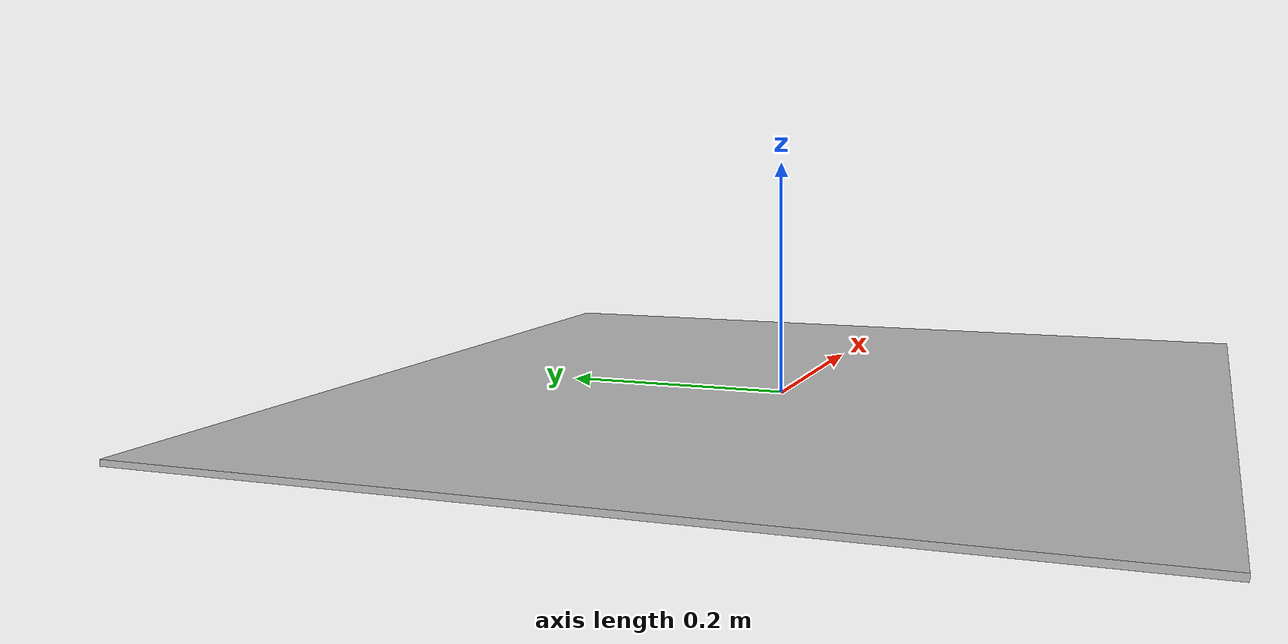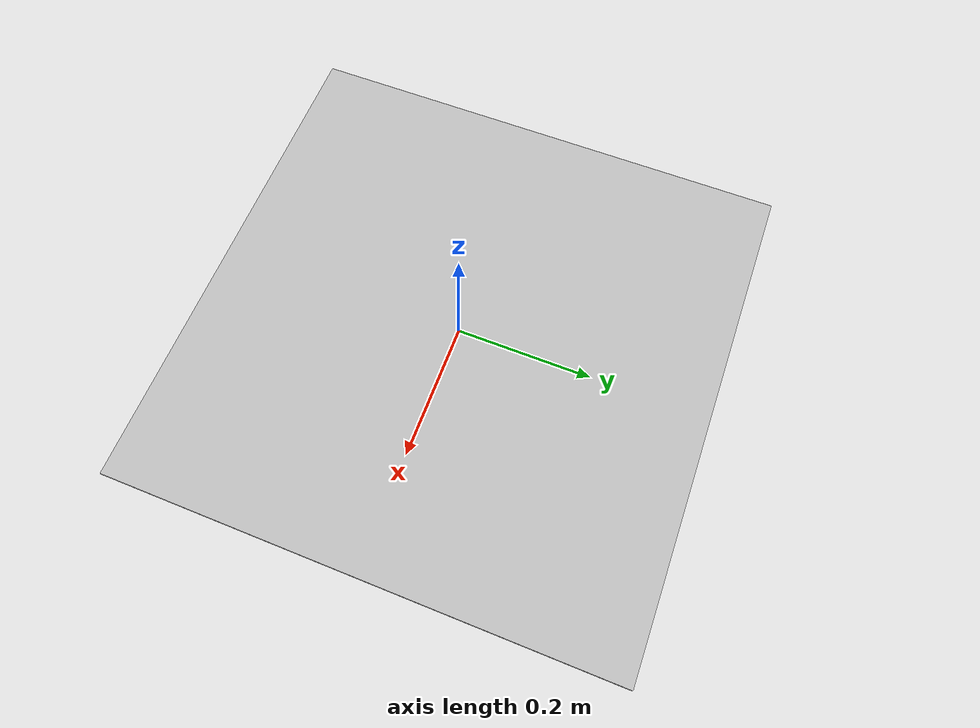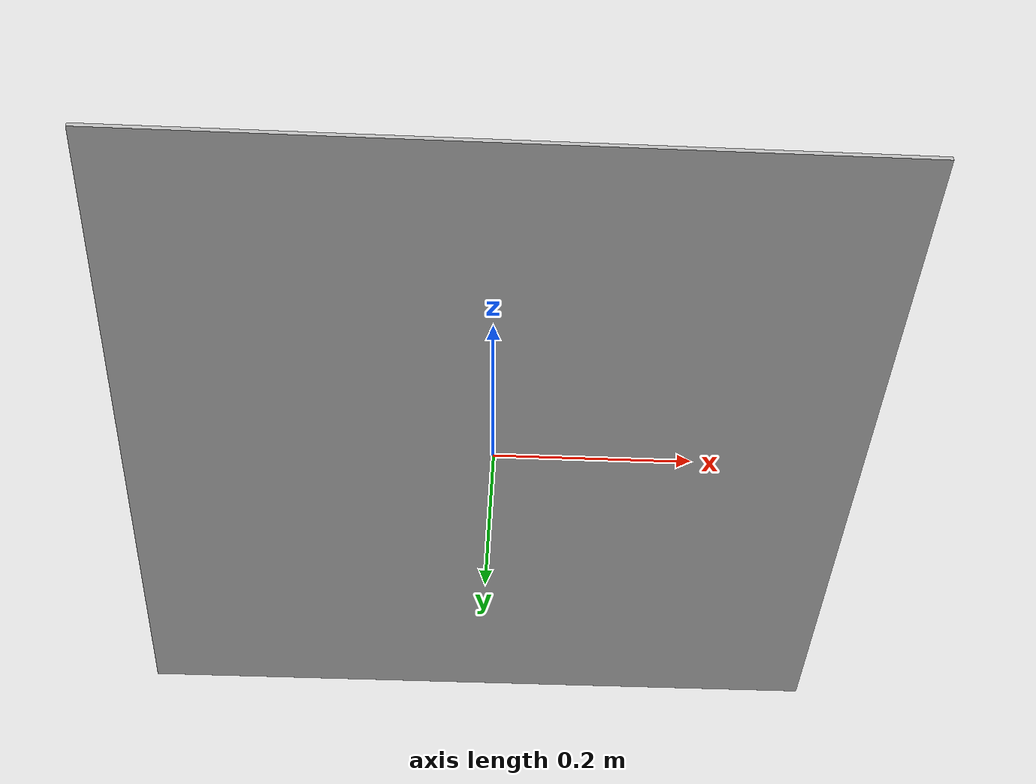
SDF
<?xml version="1.0"?>
<sdf version="1.4">
<model name="april_tag0">
  <static>true</static>
    <link name="link">
      <collision name="collision">
          <geometry>
          <box>
            <size>0.75 0.75 0.01</size>
          </box>
        </geometry>
      </collision>
      <visual name="visual">
	<pose>0 0 0 0 0 0</pose>
        <cast_shadows>false</cast_shadows>
        <geometry>
          <box>
            <size>0.75 0.75 0.005</size>
          </box>
        </geometry>
        <material>
          <script>
            <uri>model://april_tag0/materials/scripts/</uri>
	          <uri>model://april_tag0/materials/textures</uri>
            <name>AprilTag/Tag0</name>
          </script>
        </material>
      </visual>
    </link>
  </model>
</sdf>
